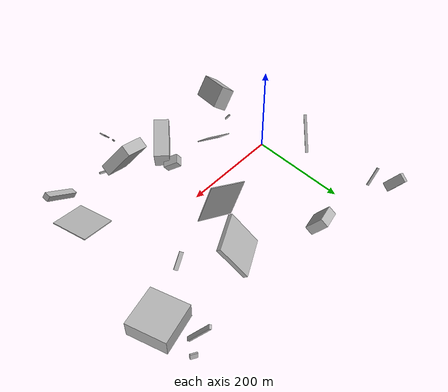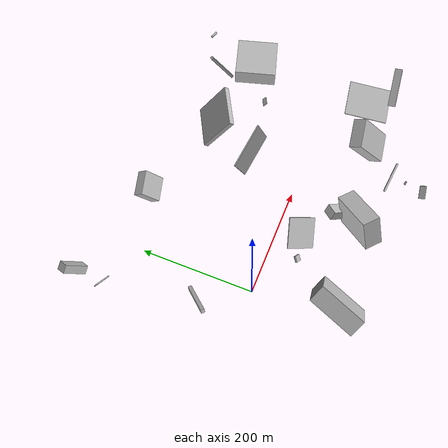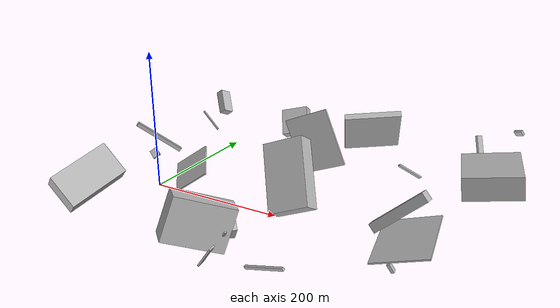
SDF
<sdf version="1.6">
 <world name="default">
  <scene>
   <sky><clouds><speed>12</speed></clouds></sky>
   <ambient>0.4 0.4 0.4 1</ambient>
   <background>0.7 0.7 0.7 1</background>
   <shadows>1</shadows>
  </scene>
  <gravity>0 0 -9.8066</gravity>
  <magnetic_field>6e-06 2.3e-05 -4.2e-05</magnetic_field>
  <physics default="0" name="default_physics" type="ode">
   <ode>
    <solver>
     <type>quick</type>
     <iters>10</iters>
     <sor>1.0</sor>
     <use_dynamic_moi_rescaling>0</use_dynamic_moi_rescaling>
    </solver>
    <constraints>
     <cfm>0</cfm>
     <erp>0.2</erp>
     <contact_max_correcting_vel>100</contact_max_correcting_vel>
     <contact_surface_layer>0.001</contact_surface_layer>
    </constraints>
   </ode>
   <max_step_size>0.004</max_step_size>
   <real_time_factor>1</real_time_factor>
   <real_time_update_rate>250</real_time_update_rate>
  </physics>
  <light name="sun" type="directional">
   <pose>0 0 10 0 0 0</pose>
   <diffuse>0.8 0.8 0.8 1</diffuse>
   <specular>0.2 0.2 0.2 1</specular>
   <attenuation>
    <range>1000</range>
    <constant>0.9</constant>
    <linear>0.01</linear>
    <quadratic>0.001</quadratic>
   </attenuation>
   <direction>-0.5 0.1 -0.9</direction>
  </light>
  <model name="building_1">
   <static>0</static>
   <pose>445.8038396406871 -70.93397545389372 70.14506210896444 1.8548804721988656 0.13447382074935318 -1.383984425514362</pose>
   <link name="link">
    <gravity>0</gravity>
    <pose>0 0 34.0 0 0 0</pose>
    <collision name="collision"><geometry><box><size>80 2 68</size></box></geometry></collision>
    <visual name="visual">
     <cast_shadows>0</cast_shadows>
     <geometry><box><size>80 2 68</size></box></geometry>
     <material>
      <script>
       <uri>model://HANNAS_wall/materials/scripts</uri>
       <uri>model://HANNAS_wall/materials/textures</uri>
       <name>vrc/HANNAS_wall</name>
      </script>
     </material>
    </visual>
   </link>
  </model>
  <model name="building_2">
   <static>0</static>
   <pose>-76.14646764939663 281.3717910088883 40.01054088277779 -2.5297804067129004 -0.804419637613809 2.358952618921185</pose>
   <link name="link">
    <gravity>0</gravity>
    <pose>0 0 7.0 0 0 0</pose>
    <collision name="collision"><geometry><box><size>41 19 14</size></box></geometry></collision>
    <visual name="visual">
     <cast_shadows>0</cast_shadows>
     <geometry><box><size>41 19 14</size></box></geometry>
     <material>
      <script>
       <uri>model://HANNAS_wall/materials/scripts</uri>
       <uri>model://HANNAS_wall/materials/textures</uri>
       <name>vrc/HANNAS_wall</name>
      </script>
     </material>
    </visual>
   </link>
  </model>
  <model name="building_3">
   <static>0</static>
   <pose>146.2059900083334 -155.9713441239602 58.71345370206104 2.9917365997478824 -1.2039315240461101 0.9657177164144587</pose>
   <link name="link">
    <gravity>0</gravity>
    <pose>0 0 40.0 0 0 0</pose>
    <collision name="collision"><geometry><box><size>58 31 80</size></box></geometry></collision>
    <visual name="visual">
     <cast_shadows>0</cast_shadows>
     <geometry><box><size>58 31 80</size></box></geometry>
     <material>
      <script>
       <uri>model://HANNAS_wall/materials/scripts</uri>
       <uri>model://HANNAS_wall/materials/textures</uri>
       <name>vrc/HANNAS_wall</name>
      </script>
     </material>
    </visual>
   </link>
  </model>
  <model name="building_4">
   <static>0</static>
   <pose>80.75518036167193 -52.60661276309383 50.66353389277161 0.8810612857783184 -0.4299795248444979 2.1871304454556557</pose>
   <link name="link">
    <gravity>0</gravity>
    <pose>0 0 25.5 0 0 0</pose>
    <collision name="collision"><geometry><box><size>49 2 51</size></box></geometry></collision>
    <visual name="visual">
     <cast_shadows>0</cast_shadows>
     <geometry><box><size>49 2 51</size></box></geometry>
     <material>
      <script>
       <uri>model://HANNAS_wall/materials/scripts</uri>
       <uri>model://HANNAS_wall/materials/textures</uri>
       <name>vrc/HANNAS_wall</name>
      </script>
     </material>
    </visual>
   </link>
  </model>
  <model name="building_5">
   <static>0</static>
   <pose>250.2289968508433 -214.88167894938147 64.96140237423943 2.9591442941873605 -0.9781073459094191 0.35915281130973414</pose>
   <link name="link">
    <gravity>0</gravity>
    <pose>0 0 1.0 0 0 0</pose>
    <collision name="collision"><geometry><box><size>24 11 2</size></box></geometry></collision>
    <visual name="visual">
     <cast_shadows>0</cast_shadows>
     <geometry><box><size>24 11 2</size></box></geometry>
     <material>
      <script>
       <uri>model://HANNAS_wall/materials/scripts</uri>
       <uri>model://HANNAS_wall/materials/textures</uri>
       <name>vrc/HANNAS_wall</name>
      </script>
     </material>
    </visual>
   </link>
  </model>
  <model name="building_6">
   <static>0</static>
   <pose>118.47925523639924 239.66198258744072 48.872574544583074 1.8619462619817064 -0.6056575074079091 -1.4780408682104615</pose>
   <link name="link">
    <gravity>0</gravity>
    <pose>0 0 21.5 0 0 0</pose>
    <collision name="collision"><geometry><box><size>19 42 43</size></box></geometry></collision>
    <visual name="visual">
     <cast_shadows>0</cast_shadows>
     <geometry><box><size>19 42 43</size></box></geometry>
     <material>
      <script>
       <uri>model://HANNAS_wall/materials/scripts</uri>
       <uri>model://HANNAS_wall/materials/textures</uri>
       <name>vrc/HANNAS_wall</name>
      </script>
     </material>
    </visual>
   </link>
  </model>
  <model name="building_7">
   <static>0</static>
   <pose>-5.096526963551581 -173.8541362913784 54.47693569996548 1.0914312074471333 -0.8207119712042619 -3.0497455431512934</pose>
   <link name="link">
    <gravity>0</gravity>
    <pose>0 0 40.0 0 0 0</pose>
    <collision name="collision"><geometry><box><size>46 30 80</size></box></geometry></collision>
    <visual name="visual">
     <cast_shadows>0</cast_shadows>
     <geometry><box><size>46 30 80</size></box></geometry>
     <material>
      <script>
       <uri>model://HANNAS_wall/materials/scripts</uri>
       <uri>model://HANNAS_wall/materials/textures</uri>
       <name>vrc/HANNAS_wall</name>
      </script>
     </material>
    </visual>
   </link>
  </model>
  <model name="building_8">
   <static>0</static>
   <pose>444.3872779592348 165.71529304163062 30.827196446499528 0.035244775547690364 -0.11393498433920002 0.2988437477974442</pose>
   <link name="link">
    <gravity>0</gravity>
    <pose>0 0 17.0 0 0 0</pose>
    <collision name="collision"><geometry><box><size>80 80 34</size></box></geometry></collision>
    <visual name="visual">
     <cast_shadows>0</cast_shadows>
     <geometry><box><size>80 80 34</size></box></geometry>
     <material>
      <script>
       <uri>model://HANNAS_wall/materials/scripts</uri>
       <uri>model://HANNAS_wall/materials/textures</uri>
       <name>vrc/HANNAS_wall</name>
      </script>
     </material>
    </visual>
   </link>
  </model>
  <model name="building_9">
   <static>0</static>
   <pose>454.59999811149515 263.52990684842143 76.9151210635764 0.537274337136864 -0.2472373142839155 -0.4297416648263569</pose>
   <link name="link">
    <gravity>0</gravity>
    <pose>0 0 4.0 0 0 0</pose>
    <collision name="collision"><geometry><box><size>13 4 8</size></box></geometry></collision>
    <visual name="visual">
     <cast_shadows>0</cast_shadows>
     <geometry><box><size>13 4 8</size></box></geometry>
     <material>
      <script>
       <uri>model://HANNAS_wall/materials/scripts</uri>
       <uri>model://HANNAS_wall/materials/textures</uri>
       <name>vrc/HANNAS_wall</name>
      </script>
     </material>
    </visual>
   </link>
  </model>
  <model name="building_10">
   <static>0</static>
   <pose>252.3178963417242 -182.7901772229791 74.00823504411994 -0.07547066148199053 -1.0071166111968173 -0.32945099683664725</pose>
   <link name="link">
    <gravity>0</gravity>
    <pose>0 0 1.0 0 0 0</pose>
    <collision name="collision"><geometry><box><size>6 3 2</size></box></geometry></collision>
    <visual name="visual">
     <cast_shadows>0</cast_shadows>
     <geometry><box><size>6 3 2</size></box></geometry>
     <material>
      <script>
       <uri>model://HANNAS_wall/materials/scripts</uri>
       <uri>model://HANNAS_wall/materials/textures</uri>
       <name>vrc/HANNAS_wall</name>
      </script>
     </material>
    </visual>
   </link>
  </model>
  <model name="building_11">
   <static>0</static>
   <pose>53.30483903641387 -58.37752148747505 77.36322334829802 -0.8024251850227555 -0.5952853318662933 0.7150679155014342</pose>
   <link name="link">
    <gravity>0</gravity>
    <pose>0 0 6.0 0 0 0</pose>
    <collision name="collision"><geometry><box><size>10 3 12</size></box></geometry></collision>
    <visual name="visual">
     <cast_shadows>0</cast_shadows>
     <geometry><box><size>10 3 12</size></box></geometry>
     <material>
      <script>
       <uri>model://HANNAS_wall/materials/scripts</uri>
       <uri>model://HANNAS_wall/materials/textures</uri>
       <name>vrc/HANNAS_wall</name>
      </script>
     </material>
    </visual>
   </link>
  </model>
  <model name="building_12">
   <static>0</static>
   <pose>-77.59170444028646 232.66797026995994 17.43057357826372 2.254695848982909 0.41082546537813364 -2.0136069234783682</pose>
   <link name="link">
    <gravity>0</gravity>
    <pose>0 0 3.0 0 0 0</pose>
    <collision name="collision"><geometry><box><size>2 41 6</size></box></geometry></collision>
    <visual name="visual">
     <cast_shadows>0</cast_shadows>
     <geometry><box><size>2 41 6</size></box></geometry>
     <material>
      <script>
       <uri>model://HANNAS_wall/materials/scripts</uri>
       <uri>model://HANNAS_wall/materials/textures</uri>
       <name>vrc/HANNAS_wall</name>
      </script>
     </material>
    </visual>
   </link>
  </model>
  <model name="building_13">
   <static>0</static>
   <pose>305.6466142784663 -97.48378162668541 124.42194050036936 1.9925300069673926 -0.5232124826910303 -1.6439421647907106</pose>
   <link name="link">
    <gravity>0</gravity>
    <pose>0 0 24.5 0 0 0</pose>
    <collision name="collision"><geometry><box><size>22 80 49</size></box></geometry></collision>
    <visual name="visual">
     <cast_shadows>0</cast_shadows>
     <geometry><box><size>22 80 49</size></box></geometry>
     <material>
      <script>
       <uri>model://HANNAS_wall/materials/scripts</uri>
       <uri>model://HANNAS_wall/materials/textures</uri>
       <name>vrc/HANNAS_wall</name>
      </script>
     </material>
    </visual>
   </link>
  </model>
  <model name="building_14">
   <static>0</static>
   <pose>250.90168958693624 196.18161585360266 46.410633865231524 0.08381805185169945 0.6588216911170249 -1.0062426518809513</pose>
   <link name="link">
    <gravity>0</gravity>
    <pose>0 0 40.0 0 0 0</pose>
    <collision name="collision"><geometry><box><size>9 80 80</size></box></geometry></collision>
    <visual name="visual">
     <cast_shadows>0</cast_shadows>
     <geometry><box><size>9 80 80</size></box></geometry>
     <material>
      <script>
       <uri>model://HANNAS_wall/materials/scripts</uri>
       <uri>model://HANNAS_wall/materials/textures</uri>
       <name>vrc/HANNAS_wall</name>
      </script>
     </material>
    </visual>
   </link>
  </model>
  <model name="building_15">
   <static>0</static>
   <pose>343.74483604354964 112.45315784975564 52.78320330576483 -0.7813208570329722 0.7762053377812566 -1.7809639069738852</pose>
   <link name="link">
    <gravity>0</gravity>
    <pose>0 0 4.0 0 0 0</pose>
    <collision name="collision"><geometry><box><size>2 34 8</size></box></geometry></collision>
    <visual name="visual">
     <cast_shadows>0</cast_shadows>
     <geometry><box><size>2 34 8</size></box></geometry>
     <material>
      <script>
       <uri>model://HANNAS_wall/materials/scripts</uri>
       <uri>model://HANNAS_wall/materials/textures</uri>
       <name>vrc/HANNAS_wall</name>
      </script>
     </material>
    </visual>
   </link>
  </model>
  <model name="building_16">
   <static>0</static>
   <pose>177.37295322016547 93.19395545072108 63.020776195923276 1.1419169121387909 -0.019858037569793385 1.379481059765899</pose>
   <link name="link">
    <gravity>0</gravity>
    <pose>0 0 40.0 0 0 0</pose>
    <collision name="collision"><geometry><box><size>2 80 80</size></box></geometry></collision>
    <visual name="visual">
     <cast_shadows>0</cast_shadows>
     <geometry><box><size>2 80 80</size></box></geometry>
     <material>
      <script>
       <uri>model://HANNAS_wall/materials/scripts</uri>
       <uri>model://HANNAS_wall/materials/textures</uri>
       <name>vrc/HANNAS_wall</name>
      </script>
     </material>
    </visual>
   </link>
  </model>
  <model name="building_17">
   <static>0</static>
   <pose>192.66927130340068 -97.34582536460819 16.87086320412538 0.27776997046955854 1.0422578010659735 2.63922595307695</pose>
   <link name="link">
    <gravity>0</gravity>
    <pose>0 0 16.0 0 0 0</pose>
    <collision name="collision"><geometry><box><size>17 21 32</size></box></geometry></collision>
    <visual name="visual">
     <cast_shadows>0</cast_shadows>
     <geometry><box><size>17 21 32</size></box></geometry>
     <material>
      <script>
       <uri>model://HANNAS_wall/materials/scripts</uri>
       <uri>model://HANNAS_wall/materials/textures</uri>
       <name>vrc/HANNAS_wall</name>
      </script>
     </material>
    </visual>
   </link>
  </model>
  <model name="building_18">
   <static>0</static>
   <pose>445.0071364568381 -111.97454055325976 135.01699660487074 2.2818406906409825 -0.13502296211371168 -1.5328290972037892</pose>
   <link name="link">
    <gravity>0</gravity>
    <pose>0 0 34.0 0 0 0</pose>
    <collision name="collision"><geometry><box><size>13 11 68</size></box></geometry></collision>
    <visual name="visual">
     <cast_shadows>0</cast_shadows>
     <geometry><box><size>13 11 68</size></box></geometry>
     <material>
      <script>
       <uri>model://HANNAS_wall/materials/scripts</uri>
       <uri>model://HANNAS_wall/materials/textures</uri>
       <name>vrc/HANNAS_wall</name>
      </script>
     </material>
    </visual>
   </link>
  </model>
  <model name="building_19">
   <static>0</static>
   <pose>284.3845857099135 -157.38517724035637 30.700599953296088 -2.335552196373049 -1.135330689567446 -2.4601283776517926</pose>
   <link name="link">
    <gravity>0</gravity>
    <pose>0 0 1.5 0 0 0</pose>
    <collision name="collision"><geometry><box><size>4 57 3</size></box></geometry></collision>
    <visual name="visual">
     <cast_shadows>0</cast_shadows>
     <geometry><box><size>4 57 3</size></box></geometry>
     <material>
      <script>
       <uri>model://HANNAS_wall/materials/scripts</uri>
       <uri>model://HANNAS_wall/materials/textures</uri>
       <name>vrc/HANNAS_wall</name>
      </script>
     </material>
    </visual>
   </link>
  </model>
  <model name="building_20">
   <static>0</static>
   <pose>-55.36077689994579 69.2095498636252 41.52597130525251 -1.4634143586948056 -0.8907327058089376 0.6840647456003892</pose>
   <link name="link">
    <gravity>0</gravity>
    <pose>0 0 3.0 0 0 0</pose>
    <collision name="collision"><geometry><box><size>6 80 6</size></box></geometry></collision>
    <visual name="visual">
     <cast_shadows>0</cast_shadows>
     <geometry><box><size>6 80 6</size></box></geometry>
     <material>
      <script>
       <uri>model://HANNAS_wall/materials/scripts</uri>
       <uri>model://HANNAS_wall/materials/textures</uri>
       <name>vrc/HANNAS_wall</name>
      </script>
     </material>
    </visual>
   </link>
  </model>
  <model name="building_21">
   <static>0</static>
   <pose>408.1926497042368 224.87455621114998 40.5984696298034 1.8089930663256193 -1.0127969206142031 2.1709335513356325</pose>
   <link name="link">
    <gravity>0</gravity>
    <pose>0 0 4.0 0 0 0</pose>
    <collision name="collision"><geometry><box><size>75 5 8</size></box></geometry></collision>
    <visual name="visual">
     <cast_shadows>0</cast_shadows>
     <geometry><box><size>75 5 8</size></box></geometry>
     <material>
      <script>
       <uri>model://HANNAS_wall/materials/scripts</uri>
       <uri>model://HANNAS_wall/materials/textures</uri>
       <name>vrc/HANNAS_wall</name>
      </script>
     </material>
    </visual>
   </link>
  </model>
  <model name="building_22">
   <static>0</static>
   <pose>398.50094328312827 -76.17421872890408 23.32451258511115 2.247643995074791 1.0605928611373518 0.7519119504245845</pose>
   <link name="link">
    <gravity>0</gravity>
    <pose>0 0 2.5 0 0 0</pose>
    <collision name="collision"><geometry><box><size>13 4 5</size></box></geometry></collision>
    <visual name="visual">
     <cast_shadows>0</cast_shadows>
     <geometry><box><size>13 4 5</size></box></geometry>
     <material>
      <script>
       <uri>model://HANNAS_wall/materials/scripts</uri>
       <uri>model://HANNAS_wall/materials/textures</uri>
       <name>vrc/HANNAS_wall</name>
      </script>
     </material>
    </visual>
   </link>
  </model>
 </world>
</sdf>
